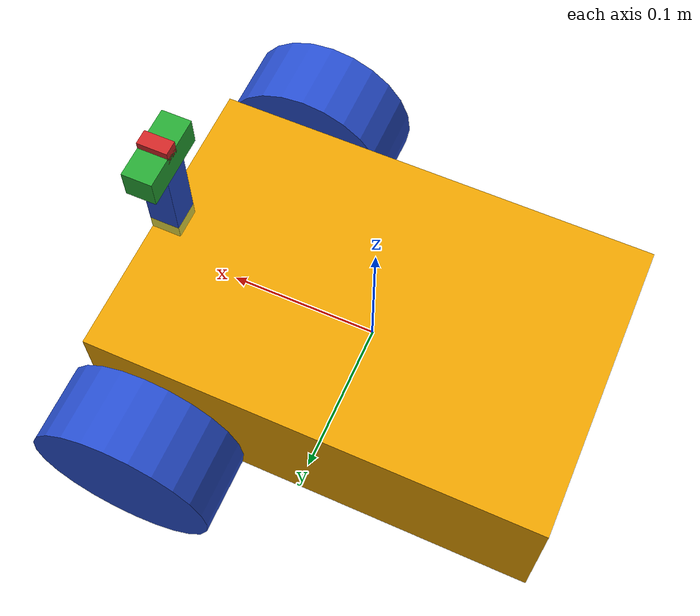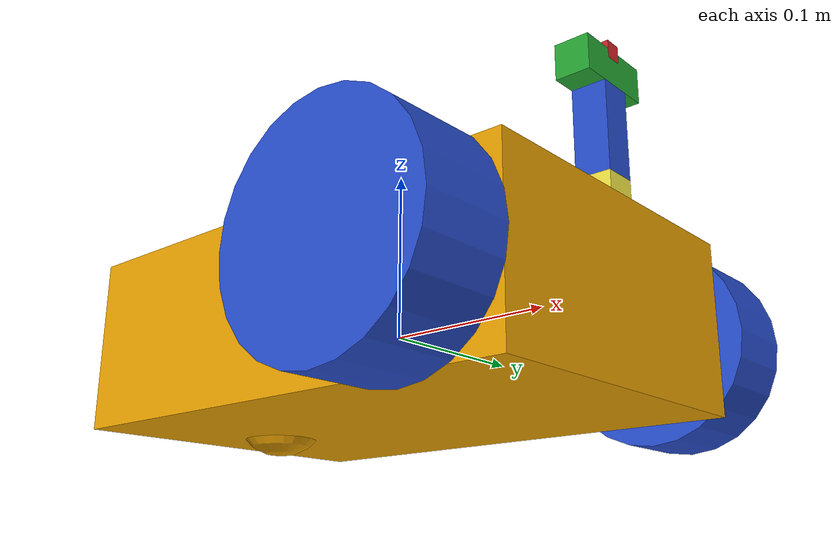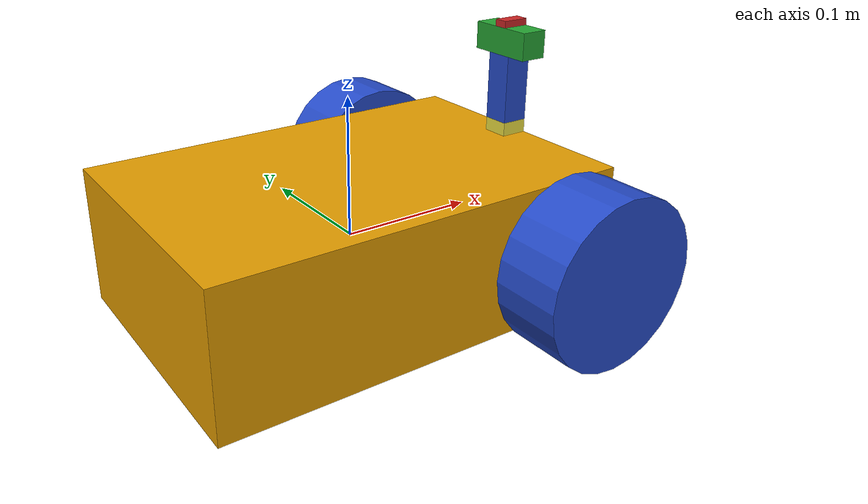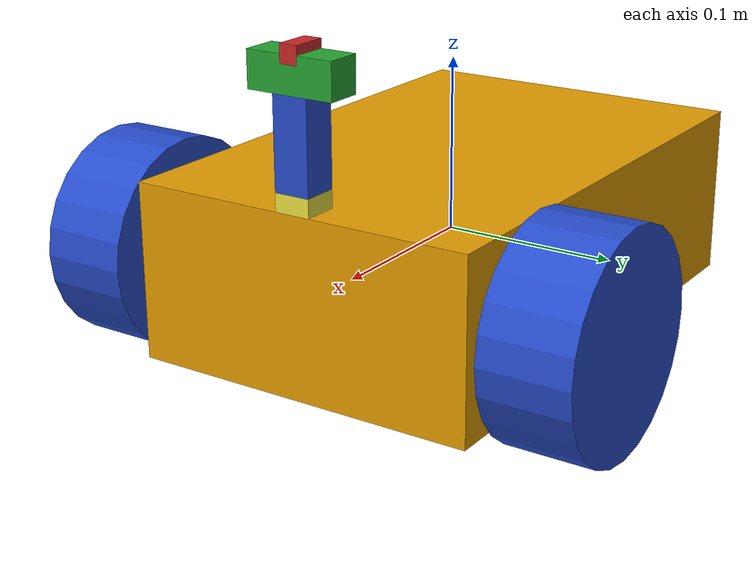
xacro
<?xml version="1.0" ?>

<robot name="ArchiBot_PandT_Camera" xmlns:xacro="https://www.ros.org/wiki/xacro" >

  <xacro:include filename="$(find adescription)/urdf/macros.xacro"/>
  <xacro:include filename="$(find adescription)/urdf/data.xacro"/>
  <xacro:include filename="$(find adescription)/urdf/materials.xacro"/>

  <link name='chassis'>
    <pose>0 0 0.1 0 0 0</pose>

    <inertial>
      <mass value="${chassisMass}"/>
      <origin xyz="0 0 0" rpy=" 0 0 0"/>
      <box_inertia m="${chassisMass}" x="${chassisLength}" y="${chassisWidth}" z="${chassisHeight}"/>
<!--            ixx="0.5" ixy="0" ixz="0"-->
<!--            iyy="1.0" iyz="0"-->
<!--            izz="0.1"-->
    </inertial>

    <collision name='collision'>
      <origin xyz="0 0 0" rpy=" 0 0 0"/>
      <geometry>
        <box size="${chassisLength} ${chassisWidth} ${chassisHeight}"/>
      </geometry>
    </collision>

    <visual name='chassis_visual'>
      <origin xyz="0 0 0" rpy=" 0 0 0"/>
      <geometry>
        <box size="${chassisLength} ${chassisWidth} ${chassisHeight}"/>
      </geometry>
    </visual>

    <collision name='caster_collision'>
      <origin xyz="${-chassisLength/3} 0 ${-casterRadius}" rpy=" 0 0 0"/>
      <geometry>
        <sphere radius="${casterRadius}"/>
      </geometry>
      <surface>
        <friction>
          <ode>
            <mu>0</mu>
            <mu2>0</mu2>
            <slip1>1.0</slip1>
            <slip2>1.0</slip2>
          </ode>
        </friction>
      </surface>
    </collision>

    <visual name='caster_visual'>
      <origin xyz="${-chassisLength/3} 0 ${-casterRadius}" rpy=" 0 0 0"/>
      <geometry>
        <sphere radius="${casterRadius}"/>
      </geometry>
    </visual>
  </link>

  <link name="left_wheel">
    <collision name="collision">
      <origin xyz="0 0 0" rpy="0 ${PI/2} ${PI/2}"/>
      <geometry>
        <cylinder radius="${wheelRadius}" length="${wheelWidth}"/>
      </geometry>
      <surface>
        <friction>
          <ode>
            <mu1 value="100"/>
            <mu2 value="100"/>
            <slip1>0.01</slip1>
            <slip2>0.01</slip2>
          </ode>
        </friction>
      </surface>
    </collision>
    <visual name="left_wheel_visual">
      <origin xyz="0 0 0" rpy="0 ${PI/2} ${PI/2}"/>
      <geometry>
        <cylinder radius="${wheelRadius}" length="${wheelWidth}"/>
      </geometry>
    </visual>
    <inertial>
      <origin xyz="0 0 0" rpy="0 ${PI/2} ${PI/2}"/>
      <mass value="${wheelMass}"/>
      <cylinder_inertia m="${wheelMass}" r="${wheelRadius}" h="${wheelWidth}"/>
      <inertia
        ixx="1.0" ixy="0.0" ixz="0.0"
        iyy="1.0" iyz="0.0"
        izz="1.0"/>
    </inertial>
  </link>

  <link name="right_wheel">
    <collision name="collision">
      <origin xyz="0 0 0" rpy="0 ${PI/2} ${PI/2}"/>
      <geometry>
        <cylinder radius="${wheelRadius}" length="${wheelWidth}"/>
      </geometry>
      <surface>
        <friction>
          <ode>
            <mu1 value="100"/>
            <mu2 value="100"/>
            <slip1>0.01</slip1>
            <slip2>0.01</slip2>
          </ode>
        </friction>
      </surface>
    </collision>
    <visual name="right_wheel_visual">
      <origin xyz="0 0 0" rpy="0 ${PI/2} ${PI/2}"/>
      <geometry>
        <cylinder radius="${wheelRadius}" length="${wheelWidth}"/>
      </geometry>
    </visual>
    <inertial>
      <origin xyz="0 0 0" rpy="0 ${PI/2} ${PI/2}"/>
      <mass value="${wheelMass}"/>
      <cylinder_inertia m="${wheelMass}" r="${wheelRadius}" h="${wheelWidth}"/>
      <inertia
        ixx="1.0" ixy="0.0" ixz="0.0"
        iyy="1.0" iyz="0.0"
        izz="1.0"/>
    </inertial>
  </link>

  <joint type="continuous" name="left_wheel_hinge">
    <origin xyz="${chassisLength/3} ${chassisWidth/2+wheelWidth/2+0.01} 0" rpy="0 0 0"/>
    <child link="left_wheel"/>
    <parent link="chassis"/>
    <axis xyz="0 1 0" rpy="0 0 0"/>
    <limit effort="100" velocity="100"/>
    <joint_properties damping="0.0" friction="0.0"/>
  </joint>

  <joint type="continuous" name="right_wheel_hinge">
    <origin xyz="${chassisLength/3} ${-chassisWidth/2-wheelWidth/2-0.01} 0" rpy="0 0 0"/>
    <child link="right_wheel"/>
    <parent link="chassis"/>
    <axis xyz="0 1 0" rpy="0 0 0"/>
    <limit effort="100" velocity="100"/>
    <joint_properties damping="0.0" friction="0.0"/>
  </joint>

  <gazebo>
    <plugin name="differential_drive_controller" filename="libgazebo_ros_diff_drive.so">
        <alwaysOn>true</alwaysOn>
        <updateRate>40</updateRate>
        <legacyMode>true</legacyMode>
        <leftJoint>left_wheel_hinge</leftJoint>
        <rightJoint>right_wheel_hinge</rightJoint>
        <wheelSeparation>0.4</wheelSeparation>
        <wheelDiameter>0.1</wheelDiameter>
        <torque>20</torque>
        <commandTopic>cmd_vel</commandTopic>
        <odometryTopic>odom</odometryTopic>
        <odometryFrame>odom</odometryFrame>
        <robotBaseFrame>chassis</robotBaseFrame>
        <publishWheelTF>false</publishWheelTF>
        <publishWheelJointState>true</publishWheelJointState>
        <rosDebugLevel>na</rosDebugLevel>
        <wheelAcceleration>0</wheelAcceleration>
        <wheelTorque>5</wheelTorque>
        <odometrySource>world</odometrySource>
        <publishTf>1</publishTf>
    </plugin>
  </gazebo>

  <gazebo reference="left_wheel">
    <material>Gazebo/Blue</material>
  </gazebo>

  <gazebo reference="right_wheel">
    <material>Gazebo/Blue</material>
  </gazebo>

  <xacro:include filename="$(find adescription)/urdf/camera_arm.xacro"/>
  <camera_arm/>

  <xacro:include filename="$(find adescription)/urdf/maincamera.xacro"/>
  <maincamera/>

</robot>

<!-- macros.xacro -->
<robot xmlns:xacro="https://www.ros.org/wiki/xacro">

	<xacro:macro name="box_inertia" params="m x y z">

		<inertia
			  ixx="${m*(y*y+z*z)/12}"
					ixy = "0"
					ixz = "0"
					iyy="${m*(x*x+z*z)/12}"
					iyz = "0"
					izz="${m*(x*x+z*z)/12}"
		/>
	</xacro:macro>

	<xacro:macro name="cylinder_inertia" params="m r h">
		<inertia
		  ixx="${m*(3*r*r+h*h)/12}"
			  ixy = "0"
			  ixz = "0"
			  iyy="${m*(3*r*r+h*h)/12}" iyz = "0"
			  izz="${m*r*r/2}"
		/>
	</xacro:macro>

	<xacro:macro name="sphere_inertia" params="m r">
		<inertia  ixx="${2*m*r*r/5}"
				ixy = "0"
				ixz = "0"
				iyy="${2*m*r*r/5}"
				iyz = "0"
				izz="${2*m*r*r/5}"
		/>
	</xacro:macro>

</robot>

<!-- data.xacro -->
<robot xmlns:xacro="https://www.ros.org/wiki/xacro" name="data">

    <xacro:property name="PI" value="3.14"/>

    <xacro:property name="chassisHeight" value="0.1"/>
    <xacro:property name="chassisLength" value="0.3"/>
    <xacro:property name="chassisWidth" value="0.2"/>
    <xacro:property name="chassisMass" value="6"/>

    <xacro:property name="wheelRadius" value="0.06"/>
    <xacro:property name="wheelWidth" value="0.05"/>
    <xacro:property name="wheelMass" value="5"/>

    <xacro:property name="casterRadius" value="0.03"/>

    <xacro:property name="cameraSize" value="0.05"/>
    <xacro:property name="cameraMass" value="0.1"/>

    <xacro:property name="joints_long" value="0.05" />
    <xacro:property name="joints_short" value="0.02" />
    <xacro:property name="joints_mass" value="0.1" />
    <xacro:property name="joint_yaw_max_speed" value="1.0" />
    <xacro:property name="joint_yaw_max_effort" value="1.0" />
    <xacro:property name="joint_pitch_max_speed" value="0.1" />
    <xacro:property name="joint_pitch_effort" value="0.1" />

    <xacro:property name="base_long" value="0.010" />
    <xacro:property name="base_short" value="0.02" />
    <xacro:property name="base_mass" value="0.001" />

    <xacro:property name="maincamera_size_long" value="0.02" />
    <xacro:property name="maincamera_size_short" value="0.01" />
    <xacro:property name="maincamera_mass" value="0.001" />
    <xacro:property name="maincamera_x_distance" value="0.08" />
    <xacro:property name="maincamera_z_distance" value="0.174219" />

</robot>

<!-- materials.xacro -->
<robot>
    <material name="black">
      <color rgba="0.0 0.0 0.0 1.0"/>
    </material>

    <material name="blue">
      <color rgba="0.0 0.0 0.8 1.0"/>
    </material>

    <material name="green">
      <color rgba="0.0 0.8 0.0 1.0"/>
    </material>

    <material name="red">
      <color rgba="0.8 0.0 0.0 1.0"/>
    </material>

    <material name="white">
      <color rgba="1.0 1.0 1.0 1.0"/>
    </material>

</robot>

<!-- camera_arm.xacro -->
<robot name="archi" xmlns:xacro="https://www.ros.org/wiki/xacro">

    <xacro:include filename="$(find adescription)/urdf/data.xacro" />
    <xacro:macro name="camera_arm">

        <link name="base_arm_link">
            <inertial>
                      <origin xyz="0 0 0" rpy="0 0 0"/>
                      <mass value="${joints_mass}" />
                      <box_inertia
                      m="${base_mass}"
                      x="${base_short}"
                      y="${base_short}"
                      z="${base_long}"/>
            </inertial>

            <collision>
                <origin xyz="0 0 0" rpy="0 0 0"/>
                <geometry>
                    <box size="${base_short} ${base_short} ${base_long}"/>
                </geometry>
            </collision>

            <visual>
                <origin rpy="0 0 0" xyz="0 0 0"/>
                <geometry>
                    <box size="${base_short} ${base_short} ${base_long}"/>
                </geometry>
            </visual>
        </link>

        <joint name="base_arm_hinge" type="fixed">
          <parent link="chassis"/>
          <child link="base_arm_link"/>
          <origin xyz="${chassisLength/2-base_long} 0 ${chassisHeight/2+base_long/2}" rpy="0 0 0"/>
        </joint>

        <link name="yaw_link">
            <inertial>
                <origin xyz="0 0 0" rpy="0 0 0"/>
                <mass value="${joints_mass}"/>
                <box_inertia
                m="${joints_mass}"
                x="${joints_short}"
                y="${joints_short}"
                z="${joints_long}"/>

            </inertial>
            <collision>
                <origin xyz="0 0 0" rpy="0 0 0"/>
                <geometry>
                    <box size="${joints_short} ${joints_short} ${joints_long}"/>
                </geometry>
            </collision>
            <visual>
                <origin rpy="0.0 0 0" xyz="0 0 0"/>
                <geometry>
                    <box size="${joints_short} ${joints_short} ${joints_long}"/>
                </geometry>
            </visual>
        </link>

        <gazebo reference="yaw_link">
            <kp>100000.0</kp>
            <kd>100000.0</kd>
            <mu1>10.0</mu1>
            <mu2>10.0</mu2>
            <material>Gazebo/Blue</material>
        </gazebo>

        <joint name="yaw_joint" type="continuous">
            <parent link="base_arm_link"/>
            <child link="yaw_link"/>
            <origin xyz="0 0 0.03" rpy="0 0 0"/>
            <limit effort="${joint_yaw_max_effort}" velocity="${joint_yaw_max_speed}"/>
            <axis xyz="0 0 1"/>
        </joint>

        <transmission name="tran1">
            <type>transmission_interface/SimpleTransmission</type>
            <joint name="yaw_joint">
                <hardwareInterface>hardware_interface/EffortJointInterface</hardwareInterface>
            </joint>
            <actuator name="motor1">
                <hardwareInterface>EffortJointInterface</hardwareInterface>
                <mechanicalReduction>1</mechanicalReduction>
            </actuator>
        </transmission>

        <link name="pitch_link">
            <inertial>
                <origin xyz="0 0 0" rpy="0 0 0"/>
                <mass value="${joints_mass}" />
                <box_inertia
                m="${joints_mass}"
                x="${joints_short}"
                y="${joints_long}"
                z="${joints_short}"/>

            </inertial>
            <collision>
                <origin xyz="0 0 0" rpy="0 0 0"/>
                <geometry>
                    <box size="${joints_short} ${joints_long} ${joints_short}"/>
                </geometry>
            </collision>
            <visual>
                <origin rpy="0.0 0 0" xyz="0 0 0"/>
                <geometry>
                    <box size="${joints_short} ${joints_long} ${joints_short}"/>
                </geometry>
            </visual>
        </link>

        <gazebo reference="pitch_link">
            <kp>100000.0</kp>
            <kd>100000.0</kd>
            <mu1>10.0</mu1>
            <mu2>10.0</mu2>
            <material>Gazebo/Green</material>
        </gazebo>

        <joint name="pitch_joint" type="revolute">
            <parent link="yaw_link"/>
            <child link="pitch_link"/>
            <origin xyz="0.0 0.0 0.035" rpy="0 0 0"/>
            <limit lower="-0.7" upper="0.7" effort="${joint_pitch_effort}" velocity="${joint_pitch_max_speed}"/>
            <axis xyz="0 1 0"/>
        </joint>

        <transmission name="tran2">
            <type>transmission_interface/SimpleTransmission</type>
            <joint name="pitch_joint">
                <hardwareInterface>hardware_interface/EffortJointInterface</hardwareInterface>
            </joint>
            <actuator name="motor2">
                <hardwareInterface>EffortJointInterface</hardwareInterface>
                <mechanicalReduction>1</mechanicalReduction>
            </actuator>
        </transmission>

        <gazebo>
          <plugin name="gazebo_ros_control" filename="libgazebo_ros_control.so">
            <robotNamespace>/pan_and_tilt</robotNamespace>
                <legacyModeNS>true</legacyModeNS>
          </plugin>
        </gazebo>

    </xacro:macro>

</robot>

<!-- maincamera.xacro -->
<robot xmlns:xacro="https://www.ros.org/wiki/xacro" name="maincamera">

    <xacro:macro name="maincamera">

        <link name="main_camera_link">
            <!-- Inertial for gazebo to take it into account, Put 1gr weight -->
            <inertial>
                <origin xyz="0 0 0" rpy="0 0 0"/>
                <mass value="${maincamera_mass}" />
                <box_inertia
				m="${maincamera_mass}"
				x="${maincamera_size_long}"
				y="${maincamera_size_short}"
				z="${maincamera_size_short}"/>
            </inertial>
    		<visual>
                <origin rpy="0.0 0 0" xyz="0 0 0"/>
                <geometry>
                    <box size="${maincamera_size_long} ${maincamera_size_short} ${maincamera_size_short}"/>
                </geometry>
            </visual>
    	</link>

        <gazebo reference="main_camera_link">
            <material>Gazebo/Red</material>
        </gazebo>

        <joint name="main_camera_joint" type="fixed">
            <parent link="pitch_link"/>
            <child link="main_camera_link"/>
            <origin xyz="0 0 0.01" rpy="0 0 0"/>
        </joint>

        <!-- camera -->
      <gazebo reference="main_camera_link">
        <sensor type="camera" name="camera1">
          <update_rate>10.0</update_rate>
          <camera name="main_cam">

              <pose>0 0 0 0 0 0</pose>

            <horizontal_fov>1.3962634</horizontal_fov>
            <image>
              <width>400</width>
              <height>400</height>
              <format>R8G8B8</format>
            </image>
            <clip>
              <near>0.01</near>
              <far>10.0</far>
            </clip>
            <noise>
              <type>gaussian</type>
              <stddev>0.0</stddev>
            </noise>
          </camera>
          <plugin name="camera_controller" filename="libgazebo_ros_camera.so">
            <alwaysOn>true</alwaysOn>
            <updateRate>0.0</updateRate>
            <cameraName>pan_and_tilt/raspicam_node</cameraName>
            <imageTopicName>image_raw</imageTopicName>
            <cameraInfoTopicName>camera_info</cameraInfoTopicName>
            <frameName>main_camera_link</frameName>
            <hackBaseline>0.07</hackBaseline>
            <distortionK1>0.0</distortionK1>
            <distortionK2>0.0</distortionK2>
            <distortionK3>0.0</distortionK3>
            <distortionT1>0.0</distortionT1>
            <distortionT2>0.0</distortionT2>
          </plugin>
        </sensor>
      </gazebo>
    </xacro:macro>

</robot>
